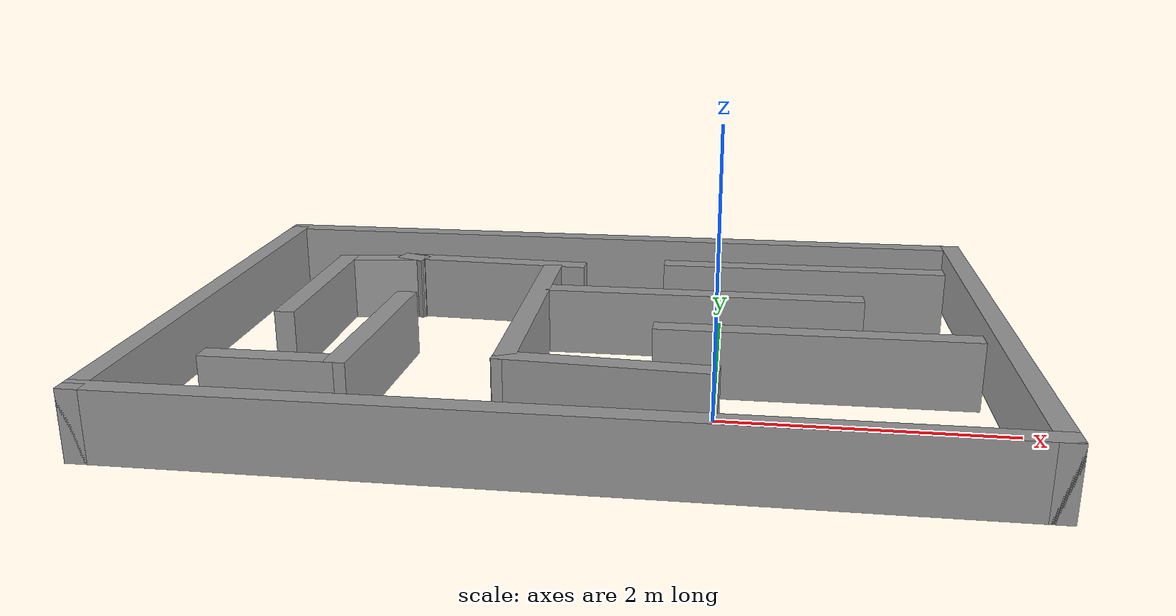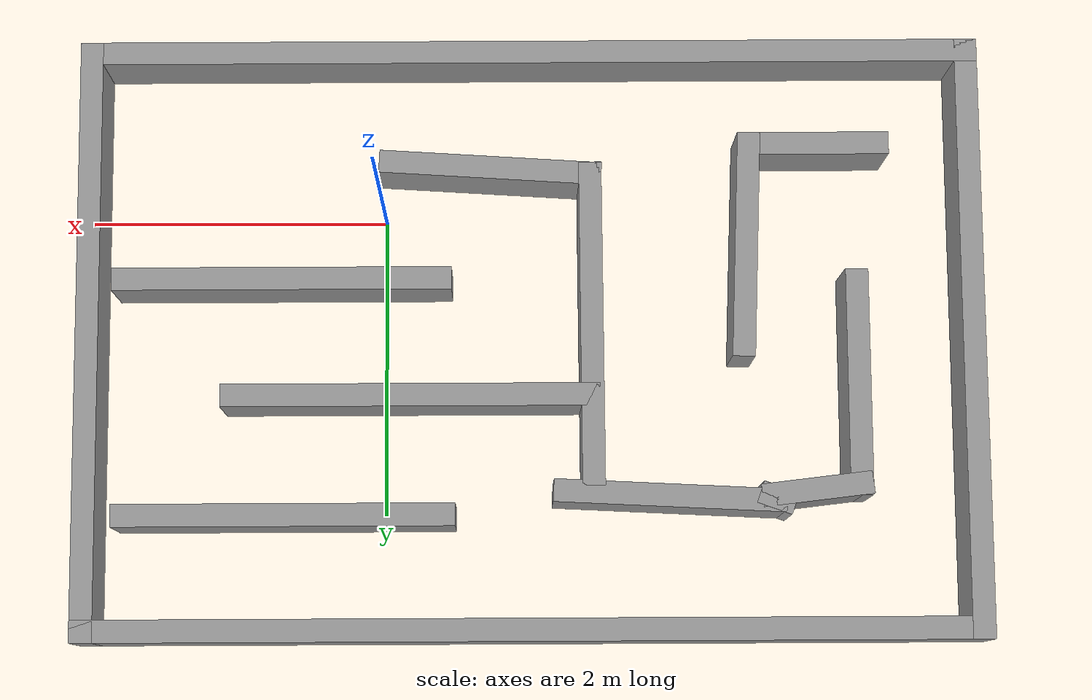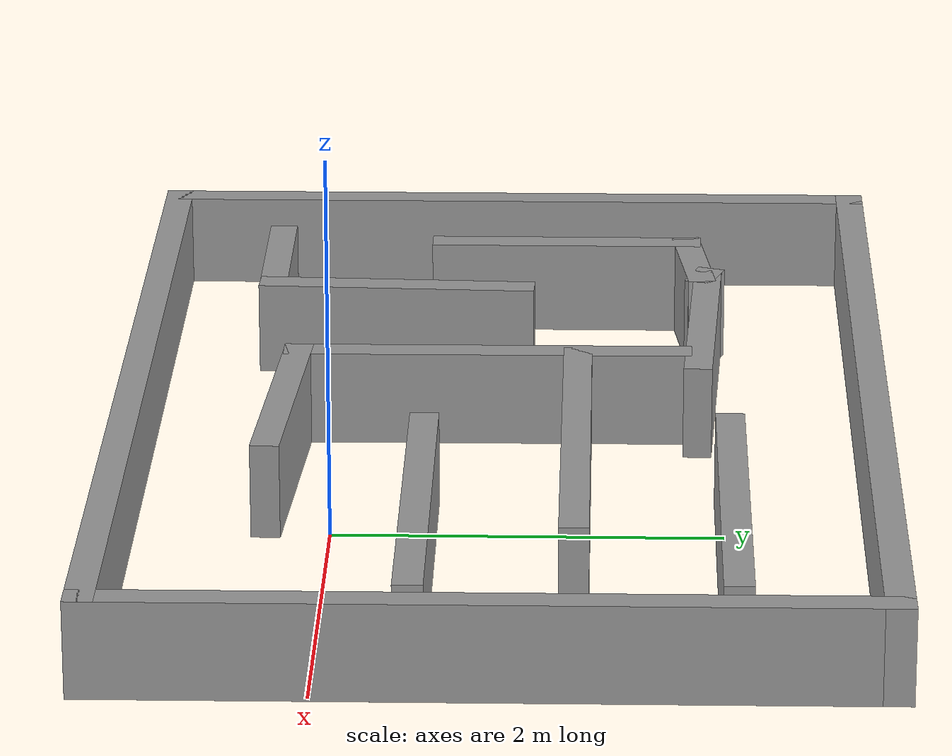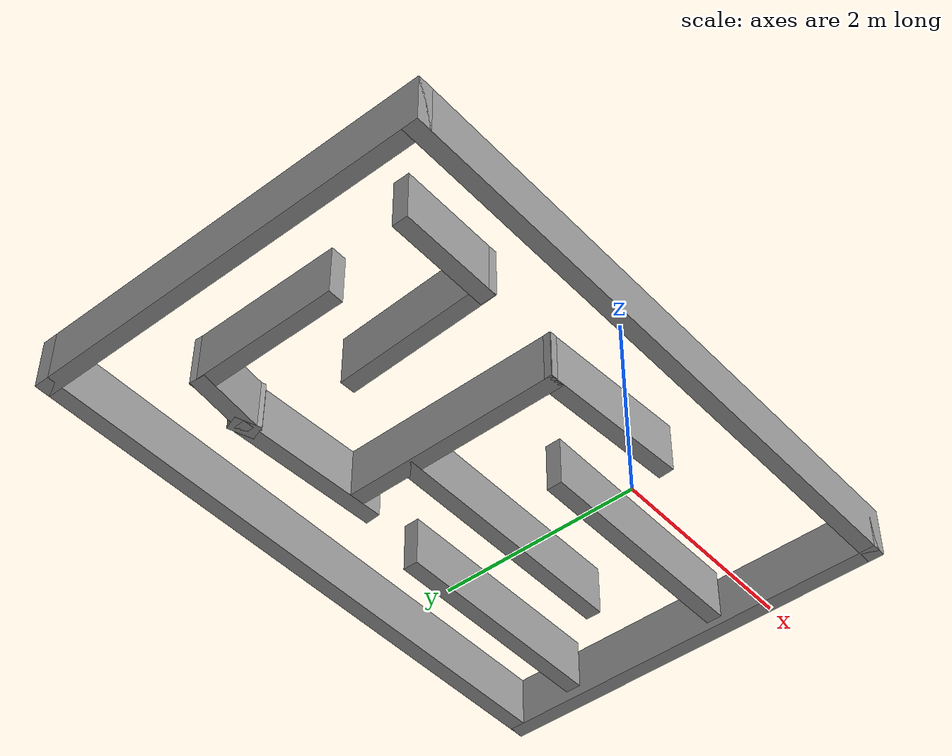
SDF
<?xml version='1.0'?>
<sdf version='1.7'>
  <model name='RTC_Arena01'>
    <pose>-0.965 0.855 0 0 -0 0</pose>
    <link name='Wall_1'>
      <collision name='Wall_1_Collision'>
        <geometry>
          <box>
            <size>6 0.15 0.5</size>
          </box>
        </geometry>
        <pose>0 0 0.250 -0 0</pose>
      </collision>
      <visual name='Wall_1_Visual'>
        <pose>0 0 0.25 0 -0 0</pose>
        <geometry>
          <box>
            <size>6 0.15 0.5</size>
          </box>
        </geometry>
        <material>
          <script>
            <uri>file://media/materials/scripts/gazebo.material</uri>
            <name>Gazebo/Grey</name>
          </script>
          <ambient>1 1 1 1</ambient>
        </material>
        <meta>
          <layer>0</layer>
        </meta>
      </visual>
      <pose>0 -1.925 0 0 -0 0</pose>
    </link>
    <link name='Wall_11'>
      <collision name='Wall_11_Collision'>
        <geometry>
          <box>
            <size>1.47992 0.15 0.5</size>
          </box>
        </geometry>
        <pose>0 0 0.25 0 -0 0</pose>
      </collision>
      <visual name='Wall_11_Visual'>
        <pose>0 0 0.25 0 -0 0</pose>
        <geometry>
          <box>
            <size>1.47992 0.15 0.5</size>
          </box>
        </geometry>
        <material>
          <script>
            <uri>file://media/materials/scripts/gazebo.material</uri>
            <name>Gazebo/Grey</name>
          </script>
          <ambient>1 1 1 1</ambient>
        </material>
        <meta>
          <layer>0</layer>
        </meta>
      </visual>
      <pose>0.261928 -1.13492 0 0 -0 3.07901</pose>
    </link>
    <link name='Wall_13'>
      <collision name='Wall_13_Collision'>
        <geometry>
          <box>
            <size>1.50927 0.15 0.5</size>
          </box>
        </geometry>
        <pose>0 0 0.25 0 -0 0</pose>
      </collision>
      <visual name='Wall_13_Visual'>
        <pose>0 0 0.25 0 -0 0</pose>
        <geometry>
          <box>
            <size>1.50927 0.15 0.5</size>
          </box>
        </geometry>
        <material>
          <script>
            <uri>file://media/materials/scripts/gazebo.material</uri>
            <name>Gazebo/Grey</name>
          </script>
          <ambient>1 1 1 1</ambient>
        </material>
        <meta>
          <layer>0</layer>
        </meta>
      </visual>
      <pose>-1.43424 -0.611153 0 0 -0 1.53183</pose>
    </link>
    <link name='Wall_15'>
      <collision name='Wall_15_Collision'>
        <geometry>
          <box>
            <size>2.25 0.15 0.5</size>
          </box>
        </geometry>
        <pose>0 0 0.25 0 -0 0</pose>
      </collision>
      <visual name='Wall_15_Visual'>
        <pose>0 0 0.25 0 -0 0</pose>
        <geometry>
          <box>
            <size>2.25 0.15 0.5</size>
          </box>
        </geometry>
        <material>
          <script>
            <uri>file://media/materials/scripts/gazebo.material</uri>
            <name>Gazebo/Grey</name>
          </script>
          <ambient>1 1 1 1</ambient>
        </material>
        <meta>
          <layer>0</layer>
        </meta>
      </visual>
      <pose>1.62228 1.1751 0 0 -0 3.14159</pose>
    </link>
    <link name='Wall_17'>
      <collision name='Wall_17_Collision'>
        <geometry>
          <box>
            <size>0.731313 0.15 0.5</size>
          </box>
        </geometry>
        <pose>0 0 0.25 0 -0 0</pose>
      </collision>
      <visual name='Wall_17_Visual'>
        <pose>0 0 0.25 0 -0 0</pose>
        <geometry>
          <box>
            <size>0.731313 0.15 0.5</size>
          </box>
        </geometry>
        <material>
          <script>
            <uri>file://media/materials/scripts/gazebo.material</uri>
            <name>Gazebo/Grey</name>
          </script>
          <ambient>1 1 1 1</ambient>
        </material>
        <meta>
          <layer>0</layer>
        </meta>
      </visual>
      <pose>-1.87082 1.02008 0 0 -0 0.117337</pose>
    </link>
    <link name='Wall_19'>
      <collision name='Wall_19_Collision'>
        <geometry>
          <box>
            <size>1.52437 0.15 0.5</size>
          </box>
        </geometry>
        <pose>0 0 0.25 0 -0 0</pose>
      </collision>
      <visual name='Wall_19_Visual'>
        <pose>0 0 0.25 0 -0 0</pose>
        <geometry>
          <box>
            <size>1.52437 0.15 0.5</size>
          </box>
        </geometry>
        <material>
          <script>
            <uri>file://media/materials/scripts/gazebo.material</uri>
            <name>Gazebo/Grey</name>
          </script>
          <ambient>1 1 1 1</ambient>
        </material>
        <meta>
          <layer>0</layer>
        </meta>
      </visual>
      <pose>-0.90603 1.05789 0 0 -0 -0.049536</pose>
    </link>
    <link name='Wall_23'>
      <collision name='Wall_23_Collision'>
        <geometry>
          <box>
            <size>2.25 0.15 0.5</size>
          </box>
        </geometry>
        <pose>0 0 0.25 0 -0 0</pose>
      </collision>
      <visual name='Wall_23_Visual'>
        <pose>0 0 0.25 0 -0 0</pose>
        <geometry>
          <box>
            <size>2.25 0.15 0.5</size>
          </box>
        </geometry>
        <material>
          <script>
            <uri>file://media/materials/scripts/gazebo.material</uri>
            <name>Gazebo/Grey</name>
          </script>
          <ambient>1 1 1 1</ambient>
        </material>
        <meta>
          <layer>0</layer>
        </meta>
      </visual>
      <pose>1.64449 -0.390123 0 0 -0 3.14159</pose>
    </link>
    <link name='Wall_25'>
      <collision name='Wall_25_Collision'>
        <geometry>
          <box>
            <size>2.15928 0.15 0.5</size>
          </box>
        </geometry>
        <pose>0 0 0.25 0 -0 0</pose>
      </collision>
      <visual name='Wall_25_Visual'>
        <pose>0 0 0.25 0 -0 0</pose>
        <geometry>
          <box>
            <size>2.15928 0.15 0.5</size>
          </box>
        </geometry>
        <material>
          <script>
            <uri>file://media/materials/scripts/gazebo.material</uri>
            <name>Gazebo/Grey</name>
          </script>
          <ambient>1 1 1 1</ambient>
        </material>
        <meta>
          <layer>0</layer>
        </meta>
      </visual>
      <pose>-0.40551 -0.088705 0 0 -0 1.57456</pose>
    </link>
    <link name='Wall_27'>
      <collision name='Wall_27_Collision'>
        <geometry>
          <box>
            <size>2.5 0.15 0.5</size>
          </box>
        </geometry>
        <pose>0 0 0.25 0 -0 0</pose>
      </collision>
      <visual name='Wall_27_Visual'>
        <pose>0 0 0.25 0 -0 0</pose>
        <geometry>
          <box>
            <size>2.5 0.15 0.5</size>
          </box>
        </geometry>
        <material>
          <script>
            <uri>file://media/materials/scripts/gazebo.material</uri>
            <name>Gazebo/Grey</name>
          </script>
          <ambient>1 1 1 1</ambient>
        </material>
        <meta>
          <layer>0</layer>
        </meta>
      </visual>
      <pose>0.792458 0.388705 0 0 -0 0</pose>
    </link>
    <link name='Wall_3'>
      <collision name='Wall_3_Collision'>
        <geometry>
          <box>
            <size>4 0.15 0.5</size>
          </box>
        </geometry>
        <pose>0 0 0.25 0 -0 0</pose>
      </collision>
      <visual name='Wall_3_Visual'>
        <pose>0 0 0.25 0 -0 0</pose>
        <geometry>
          <box>
            <size>4 0.15 0.5</size>
          </box>
        </geometry>
        <material>
          <script>
            <uri>file://media/materials/scripts/gazebo.material</uri>
            <name>Gazebo/Grey</name>
          </script>
          <ambient>1 1 1 1</ambient>
        </material>
        <meta>
          <layer>0</layer>
        </meta>
      </visual>
      <pose>2.925 0 0 0 -0 1.5708</pose>
    </link>
    <link name='Wall_30'>
      <collision name='Wall_30_Collision'>
        <geometry>
          <box>
            <size>1.5 0.15 0.5</size>
          </box>
        </geometry>
        <pose>0 0 0.25 0 -0 0</pose>
      </collision>
      <visual name='Wall_30_Visual'>
        <pose>0 0 0.25 0 -0 0</pose>
        <geometry>
          <box>
            <size>1.5 0.15 0.5</size>
          </box>
        </geometry>
        <material>
          <script>
            <uri>file://media/materials/scripts/gazebo.material</uri>
            <name>Gazebo/Grey</name>
          </script>
          <ambient>1 1 1 1</ambient>
        </material>
        <meta>
          <layer>0</layer>
        </meta>
      </visual>
      <pose>-2.15948 0.311059 0 0 -0 -1.5708</pose>
    </link>
    <link name='Wall_32'>
      <collision name='Wall_32_Collision'>
        <geometry>
          <box>
            <size>0.240996 0.15 0.5</size>
          </box>
        </geometry>
        <pose>0 0 0.25 0 -0 0</pose>
      </collision>
      <visual name='Wall_32_Visual'>
        <pose>0 0 0.25 0 -0 0</pose>
        <geometry>
          <box>
            <size>0.240996 0.15 0.5</size>
          </box>
        </geometry>
        <material>
          <script>
            <uri>file://media/materials/scripts/gazebo.material</uri>
            <name>Gazebo/Grey</name>
          </script>
          <ambient>1 1 1 1</ambient>
        </material>
        <meta>
          <layer>0</layer>
        </meta>
      </visual>
      <pose>-1.60995 1.0768 0 0 -0 2.80276</pose>
    </link>
    <link name='Wall_4'>
      <collision name='Wall_4_Collision'>
        <geometry>
          <box>
            <size>6 0.15 0.5</size>
          </box>
        </geometry>
        <pose>0 0 0.25 0 -0 0</pose>
      </collision>
      <visual name='Wall_4_Visual'>
        <pose>0 0 0.25 0 -0 0</pose>
        <geometry>
          <box>
            <size>6 0.15 0.5</size>
          </box>
        </geometry>
        <material>
          <script>
            <uri>file://media/materials/scripts/gazebo.material</uri>
            <name>Gazebo/Grey</name>
          </script>
          <ambient>1 1 1 1</ambient>
        </material>
        <meta>
          <layer>0</layer>
        </meta>
      </visual>
      <pose>0 1.925 0 0 -0 3.14159</pose>
    </link>
    <link name='Wall_5'>
      <collision name='Wall_5_Collision'>
        <geometry>
          <box>
            <size>4 0.15 0.5</size>
          </box>
        </geometry>
        <pose>0 0 0.25 0 -0 0</pose>
      </collision>
      <visual name='Wall_5_Visual'>
        <pose>0 0 0.25 0 -0 0</pose>
        <geometry>
          <box>
            <size>4 0.15 0.5</size>
          </box>
        </geometry>
        <material>
          <script>
            <uri>file://media/materials/scripts/gazebo.material</uri>
            <name>Gazebo/Grey</name>
          </script>
          <ambient>1 1 1 1</ambient>
        </material>
        <meta>
          <layer>0</layer>
        </meta>
      </visual>
      <pose>-2.925 0 0 0 -0 -1.5708</pose>
    </link>
    <link name='Wall_7'>
      <collision name='Wall_7_Collision'>
        <geometry>
          <box>
            <size>1 0.15 0.5</size>
          </box>
        </geometry>
        <pose>0 0 0.25 0 -0 0</pose>
      </collision>
      <visual name='Wall_7_Visual'>
        <pose>0 0 0.25 0 -0 0</pose>
        <geometry>
          <box>
            <size>1 0.15 0.5</size>
          </box>
        </geometry>
        <material>
          <script>
            <uri>file://media/materials/scripts/gazebo.material</uri>
            <name>Gazebo/Grey</name>
          </script>
          <ambient>1 1 1 1</ambient>
        </material>
        <meta>
          <layer>0</layer>
        </meta>
      </visual>
      <pose>-1.89327 -1.28993 0 0 -0 0</pose>
    </link>
    <static>1</static>
  </model>
</sdf>
